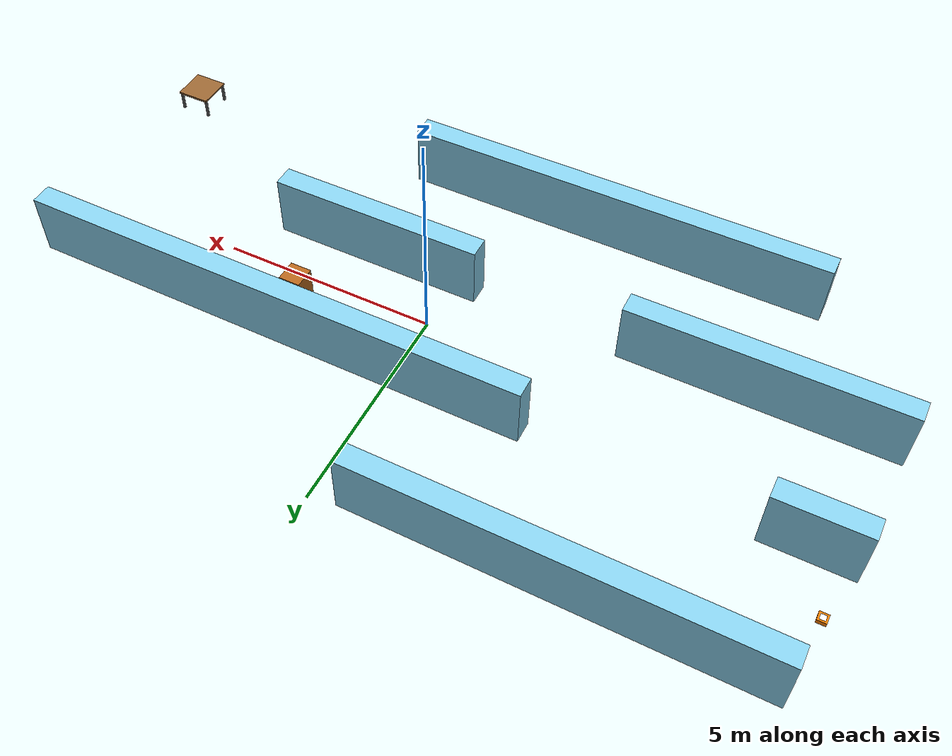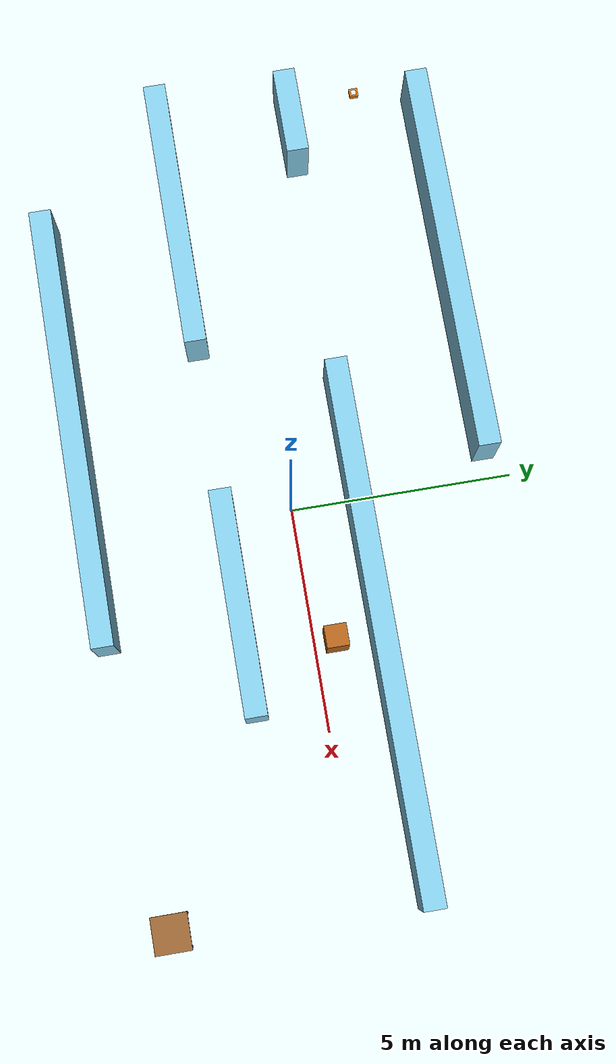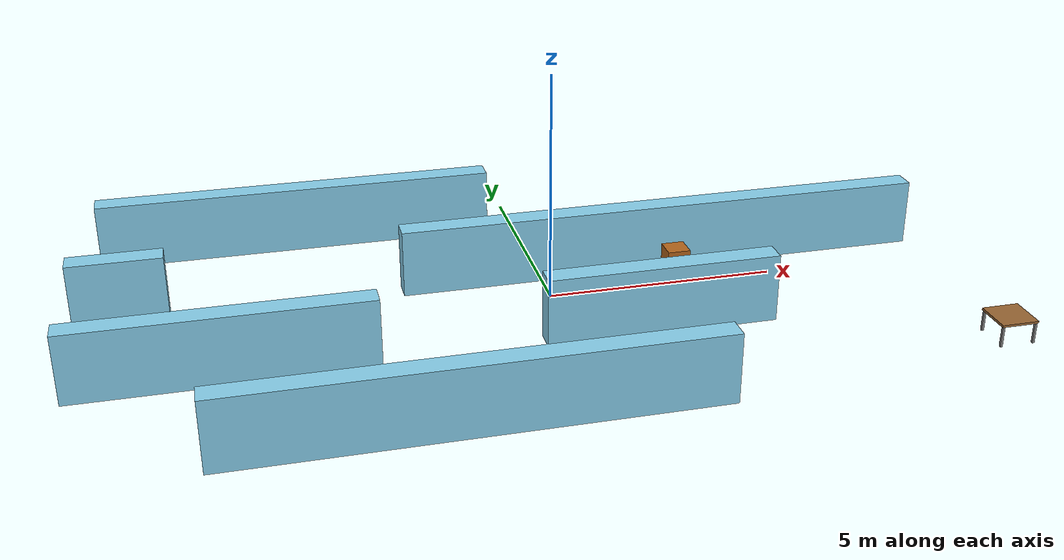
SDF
<sdf version="1.5">
 <world name="leonardo_race_field">
  <physics name="default_physics" default="0" type="ode">
   <gravity>0 0 -9.8066</gravity>
   <ode>
    <solver>
     <type>quick</type>
     <iters>10</iters>
     <sor>1.3</sor>
     <use_dynamic_moi_rescaling>0</use_dynamic_moi_rescaling>
    </solver>
    <constraints>
     <cfm>0</cfm>
     <erp>0.2</erp>
     <contact_max_correcting_vel>100</contact_max_correcting_vel>
     <contact_surface_layer>0.001</contact_surface_layer>
    </constraints>
   </ode>
   <max_step_size>0.004</max_step_size>
   <real_time_factor>1</real_time_factor>
   <real_time_update_rate>250</real_time_update_rate>
   <magnetic_field>6.0e-6 2.3e-5 -4.2e-5</magnetic_field>
  </physics>
  <light type="directional" name="sun">
   <pose>0 0 10 0 0 0</pose>
   <diffuse>0.8 0.8 0.8 1</diffuse>
   <specular>0.2 0.2 0.2 1</specular>
   <attenuation>
    <range>1000</range>
    <constant>0.9</constant>
    <linear>0.01</linear>
    <quadratic>0.001</quadratic>
   </attenuation>
   <direction>-0.5 0.1 -0.9</direction>
  </light>
  <model name="shelf_1">
   <static>true</static>
   <pose>3.0 1.5 0.5 0 0 0</pose>
   <link name="link">
    <collision name="collision"><geometry><box><size>10.0 0.5 1.5</size></box></geometry></collision>
    <visual name="visual">
     <geometry><box><size>12.0 0.5 1.5</size></box></geometry>
     <material>
      <ambient>0.53 0.81 0.92 1</ambient>
      <diffuse>0.53 0.81 0.92 1</diffuse>
      <specular>0.3 0.3 0.3 1</specular>
     </material>
    </visual>
   </link>
  </model>
  <model name="shelf_2">
   <static>true</static>
   <pose>2.0 -1.5 0.5 0 0 0</pose>
   <link name="link">
    <collision name="collision"><geometry><box><size>5.0 0.5 1.5</size></box></geometry></collision>
    <visual name="visual">
     <geometry><box><size>5.0 0.5 1.5</size></box></geometry>
     <material>
      <ambient>0.53 0.81 0.92 1</ambient>
      <diffuse>0.53 0.81 0.92 1</diffuse>
      <specular>0.3 0.3 0.3 1</specular>
     </material>
    </visual>
   </link>
  </model>
  <model name="shelf_3">
   <static>true</static>
   <pose>-5.0 4.5 0.5 0 0 0</pose>
   <link name="link">
    <collision name="collision"><geometry><box><size>3.0 0.5 1.5</size></box></geometry></collision>
    <visual name="visual">
     <geometry><box><size>9.0 0.5 1.5</size></box></geometry>
     <material>
      <ambient>0.53 0.81 0.92 1</ambient>
      <diffuse>0.53 0.81 0.92 1</diffuse>
      <specular>0.3 0.3 0.3 1</specular>
     </material>
    </visual>
   </link>
  </model>
  <model name="shelf_4">
   <static>true</static>
   <pose>-9.0 1.5 0.5 0 0 0</pose>
   <link name="link">
    <collision name="collision"><geometry><box><size>3.0 0.5 1.5</size></box></geometry></collision>
    <visual name="visual">
     <geometry><box><size>2.0 0.5 1.5</size></box></geometry>
     <material>
      <ambient>0.53 0.81 0.92 1</ambient>
      <diffuse>0.53 0.81 0.92 1</diffuse>
      <specular>0.3 0.3 0.3 1</specular>
     </material>
    </visual>
   </link>
  </model>
  <model name="shelf_5">
   <static>true</static>
   <pose>-7 -1.5 0.5 0 0 0</pose>
   <link name="link">
    <collision name="collision"><geometry><box><size>6.2 0.5 1.5</size></box></geometry></collision>
    <visual name="visual">
     <geometry><box><size>6.2 0.5 1.5</size></box></geometry>
     <material>
      <ambient>0.53 0.81 0.92 1</ambient>
      <diffuse>0.53 0.81 0.92 1</diffuse>
      <specular>0.3 0.3 0.3 1</specular>
     </material>
    </visual>
   </link>
  </model>
  <model name="shelf_6">
   <static>true</static>
   <pose>-2.5 -4.5 0.5 0 0 0</pose>
   <link name="link">
    <collision name="collision"><geometry><box><size>10.0 0.5 1.5</size></box></geometry></collision>
    <visual name="visual">
     <geometry><box><size>10.0 0.5 1.5</size></box></geometry>
     <material>
      <ambient>0.53 0.81 0.92 1</ambient>
      <diffuse>0.53 0.81 0.92 1</diffuse>
      <specular>0.3 0.3 0.3 1</specular>
     </material>
    </visual>
   </link>
  </model>
  <model name="pallet_1">
   <static>true</static>
   <pose>3.0 0.5 0.1 0 0 0</pose>
   <link name="link">
    <collision name="collision"><geometry><box><size>0.5 0.5 1</size></box></geometry></collision>
    <visual name="visual">
     <geometry><box><size>0.5 0.5 1</size></box></geometry>
     <material>
      <ambient>0.71 0.40 0.11 1</ambient>
      <diffuse>0.71 0.40 0.11 1</diffuse>
      <specular>0.3 0.3 0.3 1</specular>
     </material>
    </visual>
   </link>
  </model>
  <plugin filename="gz-sim-physics-system" name="gz::sim::systems::Physics"/>
  <plugin filename="gz-sim-user-commands-system" name="gz::sim::systems::UserCommands"/>
  <plugin filename="gz-sim-scene-broadcaster-system" name="gz::sim::systems::SceneBroadcaster"/>
  <model name="work_table">
   <static>true</static>
   <pose>8.6 -4.0 0.0 0 0 0</pose>
   <link name="link">
    <inertial><mass>20</mass><inertia ixx="1" ixy="0" ixz="0" iyy="1" iyz="0" izz="1"/></inertial>
    <visual name="top_visual">
     <pose>0 0 0.475 0 0 0</pose>
     <geometry><box><size>0.8 0.8 0.05</size></box></geometry>
     <material><ambient>0.6 0.4 0.2 1</ambient><diffuse>0.6 0.4 0.2 1</diffuse></material>
    </visual>
    <collision name="top_collision">
     <pose>0 0 0.475 0 0 0</pose>
     <geometry><box><size>0.8 0.8 0.05</size></box></geometry>
    </collision>
    <visual name="leg1_visual">
     <pose>0.36 0.36 0.225 0 0 0</pose>
     <geometry><box><size>0.05 0.05 0.45</size></box></geometry>
     <material><ambient>0.5 0.5 0.5 1</ambient><diffuse>0.5 0.5 0.5 1</diffuse></material>
    </visual>
    <collision name="leg1_collision">
     <pose>0.36 0.36 0.225 0 0 0</pose>
     <geometry><box><size>0.05 0.05 0.45</size></box></geometry>
    </collision>
    <visual name="leg2_visual">
     <pose>0.36 -0.36 0.225 0 0 0</pose>
     <geometry><box><size>0.05 0.05 0.45</size></box></geometry>
     <material><ambient>0.5 0.5 0.5 1</ambient><diffuse>0.5 0.5 0.5 1</diffuse></material>
    </visual>
    <collision name="leg2_collision">
     <pose>0.36 -0.36 0.225 0 0 0</pose>
     <geometry><box><size>0.05 0.05 0.45</size></box></geometry>
    </collision>
    <visual name="leg3_visual">
     <pose>-0.36 0.36 0.225 0 0 0</pose>
     <geometry><box><size>0.05 0.05 0.45</size></box></geometry>
     <material><ambient>0.5 0.5 0.5 1</ambient><diffuse>0.5 0.5 0.5 1</diffuse></material>
    </visual>
    <collision name="leg3_collision">
     <pose>-0.36 0.36 0.225 0 0 0</pose>
     <geometry><box><size>0.05 0.05 0.45</size></box></geometry>
    </collision>
    <visual name="leg4_visual">
     <pose>-0.36 -0.36 0.225 0 0 0</pose>
     <geometry><box><size>0.05 0.05 0.45</size></box></geometry>
     <material><ambient>0.5 0.5 0.5 1</ambient><diffuse>0.5 0.5 0.5 1</diffuse></material>
    </visual>
    <collision name="leg4_collision">
     <pose>-0.36 -0.36 0.225 0 0 0</pose>
     <geometry><box><size>0.05 0.05 0.45</size></box></geometry>
    </collision>
   </link>
  </model>
  <model name="package">
   <static>false</static>
   <pose>-9.6 3.1 0.3 0 0 0</pose>
   <link name="package_link">
    <inertial><mass>1.5</mass><inertia ixx="0.002" ixy="0" ixz="0" iyy="0.002" iyz="0" izz="0.0033"/></inertial>
    <velocity_decay><linear>0.01</linear><angular>0.01</angular></velocity_decay>
    <collision name="collision">
     <geometry><box><size>0.2 0.2 0.1</size></box></geometry>
     <surface>
      <friction><ode><mu>100.0</mu><mu2>100.0</mu2></ode></friction>
      <contact>
       <ode><kp>100000.0</kp><kd>100.0</kd><max_vel>0.0</max_vel><min_depth>0.005</min_depth></ode>
      </contact>
     </surface>
    </collision>
    <visual name="visual">
     <geometry><box><size>0.2 0.2 0.1</size></box></geometry>
     <material><ambient>1 0.5 0 1</ambient><diffuse>1 0.5 0 1</diffuse></material>
    </visual>
    <visual name="aruco_tag_visual">
     <pose>0 0 0.051 0 0 0</pose>
     <geometry><box><size>0.12 0.12 0.001</size></box></geometry>
     <material>
      <ambient>1 1 1 1</ambient>
      <diffuse>1 1 1 1</diffuse>
      <specular>0 0 0 1</specular>
      <pbr>
       <metal>
        <albedo_map>/home/user/ros2_ws/src/arucotag/arucotag.png</albedo_map>
        <roughness>0.5</roughness>
        <metalness>0.0</metalness>
       </metal>
      </pbr>
     </material>
    </visual>
   </link>
  </model>
 </world>
</sdf>
